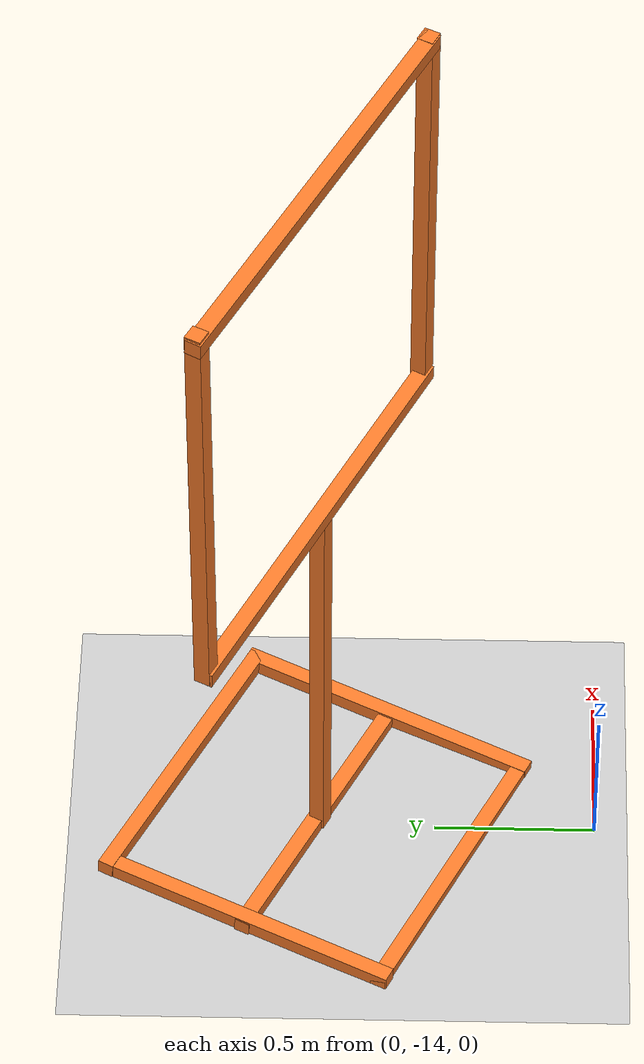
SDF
<sdf version="1.6">
 <world name="default">
  <model name="ground_plane">
   <static>1</static>
   <link name="link">
    <collision name="collision">
     <geometry><plane><normal>0 0 1</normal><size>100 100</size></plane></geometry>
     <surface><friction><ode><mu>100</mu><mu2>50</mu2></ode></friction></surface>
    </collision>
    <visual name="visual">
     <cast_shadows>0</cast_shadows>
     <geometry><plane><normal>0 0 1</normal><size>100 100</size></plane></geometry>
     <material>
      <script><uri>file://media/materials/scripts/gazebo.material</uri><name>Gazebo/Grey</name></script>
     </material>
    </visual>
    <velocity_decay><linear>0</linear><angular>0</angular></velocity_decay>
   </link>
  </model>
  <model name="closed_gate_clone_clone">
   <link name="link">
    <inertial>
     <mass>1</mass>
     <inertia>
      <ixx>0.166667</ixx>
      <ixy>0</ixy>
      <ixz>0</ixz>
      <iyy>0.166667</iyy>
      <iyz>0</iyz>
      <izz>0.166667</izz>
     </inertia>
    </inertial>
    <pose>0.404756 -0.715724 1.41623 0 -0 0</pose>
    <visual name="visual">
     <geometry><box><size>0.05 0.05 1.4</size></box></geometry>
     <material>
      <script><name>Gazebo/Grey</name><uri>file://media/materials/scripts/gazebo.material</uri></script>
      <shader type="vertex"><normal_map>__default__</normal_map></shader>
      <ambient>0.976 0.484 0.164 1</ambient>
      <diffuse>0.976 0.484 0.164 1</diffuse>
      <specular>0.01 0.01 0.01 1</specular>
      <emissive>0 0 0 1</emissive>
     </material>
    </visual>
    <collision name="collision">
     <geometry><box><size>0.05 0.05 1.4</size></box></geometry>
     <surface>
      <friction>
       <ode><mu>1</mu><mu2>1</mu2><fdir1>0 0 0</fdir1><slip1>0</slip1><slip2>0</slip2></ode>
       <torsional>
        <coefficient>1</coefficient>
        <patch_radius>0</patch_radius>
        <surface_radius>0</surface_radius>
        <use_patch_radius>1</use_patch_radius>
        <ode><slip>0</slip></ode>
       </torsional>
      </friction>
      <bounce><restitution_coefficient>0</restitution_coefficient><threshold>1e+06</threshold></bounce>
      <contact>
       <collide_without_contact>0</collide_without_contact>
       <collide_without_contact_bitmask>1</collide_without_contact_bitmask>
       <collide_bitmask>1</collide_bitmask>
       <ode>
        <soft_cfm>0</soft_cfm>
        <soft_erp>0.2</soft_erp>
        <kp>1e+13</kp>
        <kd>1</kd>
        <max_vel>0.01</max_vel>
        <min_depth>0</min_depth>
       </ode>
       <bullet>
        <split_impulse>1</split_impulse>
        <split_impulse_penetration_threshold>-0.01</split_impulse_penetration_threshold>
        <soft_cfm>0</soft_cfm>
        <soft_erp>0.2</soft_erp>
        <kp>1e+13</kp>
        <kd>1</kd>
       </bullet>
      </contact>
     </surface>
    </collision>
   </link>
   <link name="link_clone_0_clone_0">
    <inertial>
     <mass>1</mass>
     <inertia>
      <ixx>0.166667</ixx>
      <ixy>0</ixy>
      <ixz>0</ixz>
      <iyy>0.166667</iyy>
      <iyz>0</iyz>
      <izz>0.166667</izz>
     </inertia>
    </inertial>
    <pose>1.11096 -0.693594 -0.667388 -1.57955 0.044957 -1.56415</pose>
    <visual name="visual">
     <geometry><box><size>0.05 0.05 1</size></box></geometry>
     <material>
      <script><name>Gazebo/Grey</name><uri>file://media/materials/scripts/gazebo.material</uri></script>
      <shader type="vertex"><normal_map>__default__</normal_map></shader>
      <ambient>0.976 0.484 0.164 1</ambient>
      <diffuse>0.976 0.484 0.164 1</diffuse>
      <specular>0.01 0.01 0.01 1</specular>
      <emissive>0 0 0 1</emissive>
     </material>
    </visual>
    <collision name="collision">
     <geometry><box><size>0.05 0.05 1</size></box></geometry>
     <surface>
      <friction>
       <ode><mu>1</mu><mu2>1</mu2><fdir1>0 0 0</fdir1><slip1>0</slip1><slip2>0</slip2></ode>
       <torsional>
        <coefficient>1</coefficient>
        <patch_radius>0</patch_radius>
        <surface_radius>0</surface_radius>
        <use_patch_radius>1</use_patch_radius>
        <ode><slip>0</slip></ode>
       </torsional>
      </friction>
      <bounce><restitution_coefficient>0</restitution_coefficient><threshold>1e+06</threshold></bounce>
      <contact>
       <collide_without_contact>0</collide_without_contact>
       <collide_without_contact_bitmask>1</collide_without_contact_bitmask>
       <collide_bitmask>1</collide_bitmask>
       <ode>
        <soft_cfm>0</soft_cfm>
        <soft_erp>0.2</soft_erp>
        <kp>1e+13</kp>
        <kd>1</kd>
        <max_vel>0.01</max_vel>
        <min_depth>0</min_depth>
       </ode>
       <bullet>
        <split_impulse>1</split_impulse>
        <split_impulse_penetration_threshold>-0.01</split_impulse_penetration_threshold>
        <soft_cfm>0</soft_cfm>
        <soft_erp>0.2</soft_erp>
        <kp>1e+13</kp>
        <kd>1</kd>
       </bullet>
      </contact>
     </surface>
    </collision>
   </link>
   <link name="link_clone_0_clone_0_clone">
    <inertial>
     <mass>1</mass>
     <inertia>
      <ixx>0.166667</ixx>
      <ixy>0</ixy>
      <ixz>0</ixz>
      <iyy>0.166667</iyy>
      <iyz>0</iyz>
      <izz>0.166667</izz>
     </inertia>
    </inertial>
    <pose>0.637485 -0.695511 -0.656732 -1.55146 -0.019345 0.017432</pose>
    <visual name="visual">
     <geometry><box><size>0.05 0.05 1</size></box></geometry>
     <material>
      <script><name>Gazebo/Grey</name><uri>file://media/materials/scripts/gazebo.material</uri></script>
      <shader type="vertex"><normal_map>__default__</normal_map></shader>
      <ambient>0.976 0.484 0.164 1</ambient>
      <diffuse>0.976 0.484 0.164 1</diffuse>
      <specular>0.01 0.01 0.01 1</specular>
      <emissive>0 0 0 1</emissive>
     </material>
    </visual>
    <collision name="collision">
     <geometry><box><size>0.05 0.05 1</size></box></geometry>
     <surface>
      <friction>
       <ode><mu>1</mu><mu2>1</mu2><fdir1>0 0 0</fdir1><slip1>0</slip1><slip2>0</slip2></ode>
       <torsional>
        <coefficient>1</coefficient>
        <patch_radius>0</patch_radius>
        <surface_radius>0</surface_radius>
        <use_patch_radius>1</use_patch_radius>
        <ode><slip>0</slip></ode>
       </torsional>
      </friction>
      <bounce><restitution_coefficient>0</restitution_coefficient><threshold>1e+06</threshold></bounce>
      <contact>
       <collide_without_contact>0</collide_without_contact>
       <collide_without_contact_bitmask>1</collide_without_contact_bitmask>
       <collide_bitmask>1</collide_bitmask>
       <ode>
        <soft_cfm>0</soft_cfm>
        <soft_erp>0.2</soft_erp>
        <kp>1e+13</kp>
        <kd>1</kd>
        <max_vel>0.01</max_vel>
        <min_depth>0</min_depth>
       </ode>
       <bullet>
        <split_impulse>1</split_impulse>
        <split_impulse_penetration_threshold>-0.01</split_impulse_penetration_threshold>
        <soft_cfm>0</soft_cfm>
        <soft_erp>0.2</soft_erp>
        <kp>1e+13</kp>
        <kd>1</kd>
       </bullet>
      </contact>
     </surface>
    </collision>
   </link>
   <link name="link_clone_0_clone_0_clone_0">
    <inertial>
     <mass>1</mass>
     <inertia>
      <ixx>0.166667</ixx>
      <ixy>0</ixy>
      <ixz>0</ixz>
      <iyy>0.166667</iyy>
      <iyz>0</iyz>
      <izz>0.166667</izz>
     </inertia>
    </inertial>
    <pose>1.12077 -1.16283 -0.677317 -1.57839 0.053451 -1.56287</pose>
    <visual name="visual">
     <geometry><box><size>0.05 0.05 1</size></box></geometry>
     <material>
      <script><name>Gazebo/Grey</name><uri>file://media/materials/scripts/gazebo.material</uri></script>
      <shader type="vertex"><normal_map>__default__</normal_map></shader>
      <ambient>0.976 0.484 0.164 1</ambient>
      <diffuse>0.976 0.484 0.164 1</diffuse>
      <specular>0.01 0.01 0.01 1</specular>
      <emissive>0 0 0 1</emissive>
     </material>
    </visual>
    <collision name="collision">
     <geometry><box><size>0.05 0.05 1</size></box></geometry>
     <surface>
      <friction>
       <ode><mu>1</mu><mu2>1</mu2><fdir1>0 0 0</fdir1><slip1>0</slip1><slip2>0</slip2></ode>
       <torsional>
        <coefficient>1</coefficient>
        <patch_radius>0</patch_radius>
        <surface_radius>0</surface_radius>
        <use_patch_radius>1</use_patch_radius>
        <ode><slip>0</slip></ode>
       </torsional>
      </friction>
      <bounce><restitution_coefficient>0</restitution_coefficient><threshold>1e+06</threshold></bounce>
      <contact>
       <collide_without_contact>0</collide_without_contact>
       <collide_without_contact_bitmask>1</collide_without_contact_bitmask>
       <collide_bitmask>1</collide_bitmask>
       <ode>
        <soft_cfm>0</soft_cfm>
        <soft_erp>0.2</soft_erp>
        <kp>1e+13</kp>
        <kd>1</kd>
        <max_vel>0.01</max_vel>
        <min_depth>0</min_depth>
       </ode>
       <bullet>
        <split_impulse>1</split_impulse>
        <split_impulse_penetration_threshold>-0.01</split_impulse_penetration_threshold>
        <soft_cfm>0</soft_cfm>
        <soft_erp>0.2</soft_erp>
        <kp>1e+13</kp>
        <kd>1</kd>
       </bullet>
      </contact>
     </surface>
    </collision>
   </link>
   <link name="link_clone_0_clone_0_clone_2">
    <inertial>
     <mass>1</mass>
     <inertia>
      <ixx>0.166667</ixx>
      <ixy>0</ixy>
      <ixz>0</ixz>
      <iyy>0.166667</iyy>
      <iyz>0</iyz>
      <izz>0.166667</izz>
     </inertia>
    </inertial>
    <pose>1.10088 -0.214462 -0.645898 -1.57451 0.053447 -1.56287</pose>
    <visual name="visual">
     <geometry><box><size>0.05 0.05 1</size></box></geometry>
     <material>
      <script><name>Gazebo/Grey</name><uri>file://media/materials/scripts/gazebo.material</uri></script>
      <shader type="vertex"><normal_map>__default__</normal_map></shader>
      <ambient>0.976 0.484 0.164 1</ambient>
      <diffuse>0.976 0.484 0.164 1</diffuse>
      <specular>0.01 0.01 0.01 1</specular>
      <emissive>0 0 0 1</emissive>
     </material>
    </visual>
    <collision name="collision">
     <geometry><box><size>0.05 0.05 1</size></box></geometry>
     <surface>
      <friction>
       <ode><mu>1</mu><mu2>1</mu2><fdir1>0 0 0</fdir1><slip1>0</slip1><slip2>0</slip2></ode>
       <torsional>
        <coefficient>1</coefficient>
        <patch_radius>0</patch_radius>
        <surface_radius>0</surface_radius>
        <use_patch_radius>1</use_patch_radius>
        <ode><slip>0</slip></ode>
       </torsional>
      </friction>
      <bounce><restitution_coefficient>0</restitution_coefficient><threshold>1e+06</threshold></bounce>
      <contact>
       <collide_without_contact>0</collide_without_contact>
       <collide_without_contact_bitmask>1</collide_without_contact_bitmask>
       <collide_bitmask>1</collide_bitmask>
       <ode>
        <soft_cfm>0</soft_cfm>
        <soft_erp>0.2</soft_erp>
        <kp>1e+13</kp>
        <kd>1</kd>
        <max_vel>0.01</max_vel>
        <min_depth>0</min_depth>
       </ode>
       <bullet>
        <split_impulse>1</split_impulse>
        <split_impulse_penetration_threshold>-0.01</split_impulse_penetration_threshold>
        <soft_cfm>0</soft_cfm>
        <soft_erp>0.2</soft_erp>
        <kp>1e+13</kp>
        <kd>1</kd>
       </bullet>
      </contact>
     </surface>
    </collision>
   </link>
   <link name="link_clone_0_clone_0_clone_clone">
    <inertial>
     <mass>1</mass>
     <inertia>
      <ixx>0.166667</ixx>
      <ixy>0</ixy>
      <ixz>0</ixz>
      <iyy>0.166667</iyy>
      <iyz>0</iyz>
      <izz>0.166667</izz>
     </inertia>
    </inertial>
    <pose>1.59453 -0.684923 -0.663241 -1.53838 -0.023075 0.018345</pose>
    <visual name="visual">
     <geometry><box><size>0.05 0.05 1</size></box></geometry>
     <material>
      <script><name>Gazebo/Grey</name><uri>file://media/materials/scripts/gazebo.material</uri></script>
      <shader type="vertex"><normal_map>__default__</normal_map></shader>
      <ambient>0.976 0.484 0.164 1</ambient>
      <diffuse>0.976 0.484 0.164 1</diffuse>
      <specular>0.01 0.01 0.01 1</specular>
      <emissive>0 0 0 1</emissive>
     </material>
    </visual>
    <collision name="collision">
     <geometry><box><size>0.05 0.05 1</size></box></geometry>
     <surface>
      <friction>
       <ode><mu>1</mu><mu2>1</mu2><fdir1>0 0 0</fdir1><slip1>0</slip1><slip2>0</slip2></ode>
       <torsional>
        <coefficient>1</coefficient>
        <patch_radius>0</patch_radius>
        <surface_radius>0</surface_radius>
        <use_patch_radius>1</use_patch_radius>
        <ode><slip>0</slip></ode>
       </torsional>
      </friction>
      <bounce><restitution_coefficient>0</restitution_coefficient><threshold>1e+06</threshold></bounce>
      <contact>
       <collide_without_contact>0</collide_without_contact>
       <collide_without_contact_bitmask>1</collide_without_contact_bitmask>
       <collide_bitmask>1</collide_bitmask>
       <ode>
        <soft_cfm>0</soft_cfm>
        <soft_erp>0.2</soft_erp>
        <kp>1e+13</kp>
        <kd>1</kd>
        <max_vel>0.01</max_vel>
        <min_depth>0</min_depth>
       </ode>
       <bullet>
        <split_impulse>1</split_impulse>
        <split_impulse_penetration_threshold>-0.01</split_impulse_penetration_threshold>
        <soft_cfm>0</soft_cfm>
        <soft_erp>0.2</soft_erp>
        <kp>1e+13</kp>
        <kd>1</kd>
       </bullet>
      </contact>
     </surface>
    </collision>
   </link>
   <link name="link_clone_0_clone_1">
    <inertial>
     <mass>1</mass>
     <inertia>
      <ixx>0.166667</ixx>
      <ixy>0</ixy>
      <ixz>0</ixz>
      <iyy>0.166667</iyy>
      <iyz>0</iyz>
      <izz>0.166667</izz>
     </inertia>
    </inertial>
    <pose>1.08198 -0.717602 0.744079 -1.56201 0.04483 -1.56244</pose>
    <visual name="visual">
     <geometry><box><size>0.05 0.05 1.4</size></box></geometry>
     <material>
      <script><name>Gazebo/Grey</name><uri>file://media/materials/scripts/gazebo.material</uri></script>
      <shader type="vertex"><normal_map>__default__</normal_map></shader>
      <ambient>0.976 0.484 0.164 1</ambient>
      <diffuse>0.976 0.484 0.164 1</diffuse>
      <specular>0.01 0.01 0.01 1</specular>
      <emissive>0 0 0 1</emissive>
     </material>
    </visual>
    <collision name="collision">
     <geometry><box><size>0.05 0.05 1.4</size></box></geometry>
     <surface>
      <friction>
       <ode><mu>1</mu><mu2>1</mu2><fdir1>0 0 0</fdir1><slip1>0</slip1><slip2>0</slip2></ode>
       <torsional>
        <coefficient>1</coefficient>
        <patch_radius>0</patch_radius>
        <surface_radius>0</surface_radius>
        <use_patch_radius>1</use_patch_radius>
        <ode><slip>0</slip></ode>
       </torsional>
      </friction>
      <bounce><restitution_coefficient>0</restitution_coefficient><threshold>1e+06</threshold></bounce>
      <contact>
       <collide_without_contact>0</collide_without_contact>
       <collide_without_contact_bitmask>1</collide_without_contact_bitmask>
       <collide_bitmask>1</collide_bitmask>
       <ode>
        <soft_cfm>0</soft_cfm>
        <soft_erp>0.2</soft_erp>
        <kp>1e+13</kp>
        <kd>1</kd>
        <max_vel>0.01</max_vel>
        <min_depth>0</min_depth>
       </ode>
       <bullet>
        <split_impulse>1</split_impulse>
        <split_impulse_penetration_threshold>-0.01</split_impulse_penetration_threshold>
        <soft_cfm>0</soft_cfm>
        <soft_erp>0.2</soft_erp>
        <kp>1e+13</kp>
        <kd>1</kd>
       </bullet>
      </contact>
     </surface>
    </collision>
   </link>
   <link name="link_clone_0_clone_1_clone">
    <inertial>
     <mass>1</mass>
     <inertia>
      <ixx>0.166667</ixx>
      <ixy>0</ixy>
      <ixz>0</ixz>
      <iyy>0.166667</iyy>
      <iyz>0</iyz>
      <izz>0.166667</izz>
     </inertia>
    </inertial>
    <pose>1.07529 -0.719849 2.09328 -1.55888 0.053444 -1.57124</pose>
    <visual name="visual">
     <geometry><box><size>0.05 0.05 1.4</size></box></geometry>
     <material>
      <script><name>Gazebo/Grey</name><uri>file://media/materials/scripts/gazebo.material</uri></script>
      <shader type="vertex"><normal_map>__default__</normal_map></shader>
      <ambient>0.976 0.484 0.164 1</ambient>
      <diffuse>0.976 0.484 0.164 1</diffuse>
      <specular>0.01 0.01 0.01 1</specular>
      <emissive>0 0 0 1</emissive>
     </material>
    </visual>
    <collision name="collision">
     <geometry><box><size>0.05 0.05 1.4</size></box></geometry>
     <surface>
      <friction>
       <ode><mu>1</mu><mu2>1</mu2><fdir1>0 0 0</fdir1><slip1>0</slip1><slip2>0</slip2></ode>
       <torsional>
        <coefficient>1</coefficient>
        <patch_radius>0</patch_radius>
        <surface_radius>0</surface_radius>
        <use_patch_radius>1</use_patch_radius>
        <ode><slip>0</slip></ode>
       </torsional>
      </friction>
      <bounce><restitution_coefficient>0</restitution_coefficient><threshold>1e+06</threshold></bounce>
      <contact>
       <collide_without_contact>0</collide_without_contact>
       <collide_without_contact_bitmask>1</collide_without_contact_bitmask>
       <collide_bitmask>1</collide_bitmask>
       <ode>
        <soft_cfm>0</soft_cfm>
        <soft_erp>0.2</soft_erp>
        <kp>1e+13</kp>
        <kd>1</kd>
        <max_vel>0.01</max_vel>
        <min_depth>0</min_depth>
       </ode>
       <bullet>
        <split_impulse>1</split_impulse>
        <split_impulse_penetration_threshold>-0.01</split_impulse_penetration_threshold>
        <soft_cfm>0</soft_cfm>
        <soft_erp>0.2</soft_erp>
        <kp>1e+13</kp>
        <kd>1</kd>
       </bullet>
      </contact>
     </surface>
    </collision>
   </link>
   <link name="link_clone_1">
    <inertial>
     <mass>1</mass>
     <inertia>
      <ixx>0.166667</ixx>
      <ixy>0</ixy>
      <ixz>0</ixz>
      <iyy>0.166667</iyy>
      <iyz>0</iyz>
      <izz>0.166667</izz>
     </inertia>
    </inertial>
    <pose>1.11167 -0.706269 0.02254 0.008527 -0.003582 0.001077</pose>
    <visual name="visual">
     <geometry><box><size>0.05 0.05 1.4</size></box></geometry>
     <material>
      <script><name>Gazebo/Grey</name><uri>file://media/materials/scripts/gazebo.material</uri></script>
      <shader type="vertex"><normal_map>__default__</normal_map></shader>
      <ambient>0.976 0.484 0.164 1</ambient>
      <diffuse>0.976 0.484 0.164 1</diffuse>
      <specular>0.01 0.01 0.01 1</specular>
      <emissive>0 0 0 1</emissive>
     </material>
    </visual>
    <collision name="collision">
     <geometry><box><size>0.05 0.05 1.4</size></box></geometry>
     <surface>
      <friction>
       <ode><mu>1</mu><mu2>1</mu2><fdir1>0 0 0</fdir1><slip1>0</slip1><slip2>0</slip2></ode>
       <torsional>
        <coefficient>1</coefficient>
        <patch_radius>0</patch_radius>
        <surface_radius>0</surface_radius>
        <use_patch_radius>1</use_patch_radius>
        <ode><slip>0</slip></ode>
       </torsional>
      </friction>
      <bounce><restitution_coefficient>0</restitution_coefficient><threshold>1e+06</threshold></bounce>
      <contact>
       <collide_without_contact>0</collide_without_contact>
       <collide_without_contact_bitmask>1</collide_without_contact_bitmask>
       <collide_bitmask>1</collide_bitmask>
       <ode>
        <soft_cfm>0</soft_cfm>
        <soft_erp>0.2</soft_erp>
        <kp>1e+13</kp>
        <kd>1</kd>
        <max_vel>0.01</max_vel>
        <min_depth>0</min_depth>
       </ode>
       <bullet>
        <split_impulse>1</split_impulse>
        <split_impulse_penetration_threshold>-0.01</split_impulse_penetration_threshold>
        <soft_cfm>0</soft_cfm>
        <soft_erp>0.2</soft_erp>
        <kp>1e+13</kp>
        <kd>1</kd>
       </bullet>
      </contact>
     </surface>
    </collision>
   </link>
   <link name="link_clone_7">
    <inertial>
     <mass>1</mass>
     <inertia>
      <ixx>0.166667</ixx>
      <ixy>0</ixy>
      <ixz>0</ixz>
      <iyy>0.166667</iyy>
      <iyz>0</iyz>
      <izz>0.166667</izz>
     </inertia>
    </inertial>
    <pose>1.75876 -0.711707 1.42733 0.008527 -0.003582 0.001077</pose>
    <visual name="visual">
     <geometry><box><size>0.05 0.05 1.4</size></box></geometry>
     <material>
      <script><name>Gazebo/Grey</name><uri>file://media/materials/scripts/gazebo.material</uri></script>
      <shader type="vertex"><normal_map>__default__</normal_map></shader>
      <ambient>0.976 0.484 0.164 1</ambient>
      <diffuse>0.976 0.484 0.164 1</diffuse>
      <specular>0.01 0.01 0.01 1</specular>
      <emissive>0 0 0 1</emissive>
     </material>
    </visual>
    <collision name="collision">
     <geometry><box><size>0.05 0.05 1.4</size></box></geometry>
     <surface>
      <friction>
       <ode><mu>1</mu><mu2>1</mu2><fdir1>0 0 0</fdir1><slip1>0</slip1><slip2>0</slip2></ode>
       <torsional>
        <coefficient>1</coefficient>
        <patch_radius>0</patch_radius>
        <surface_radius>0</surface_radius>
        <use_patch_radius>1</use_patch_radius>
        <ode><slip>0</slip></ode>
       </torsional>
      </friction>
      <bounce><restitution_coefficient>0</restitution_coefficient><threshold>1e+06</threshold></bounce>
      <contact>
       <collide_without_contact>0</collide_without_contact>
       <collide_without_contact_bitmask>1</collide_without_contact_bitmask>
       <collide_bitmask>1</collide_bitmask>
       <ode>
        <soft_cfm>0</soft_cfm>
        <soft_erp>0.2</soft_erp>
        <kp>1e+13</kp>
        <kd>1</kd>
        <max_vel>0.01</max_vel>
        <min_depth>0</min_depth>
       </ode>
       <bullet>
        <split_impulse>1</split_impulse>
        <split_impulse_penetration_threshold>-0.01</split_impulse_penetration_threshold>
        <soft_cfm>0</soft_cfm>
        <soft_erp>0.2</soft_erp>
        <kp>1e+13</kp>
        <kd>1</kd>
       </bullet>
      </contact>
     </surface>
    </collision>
   </link>
   <static>1</static>
   <pose>-0.657499 -12.0091 0.68342 0 0 -0.470174</pose>
  </model>
 </world>
</sdf>
